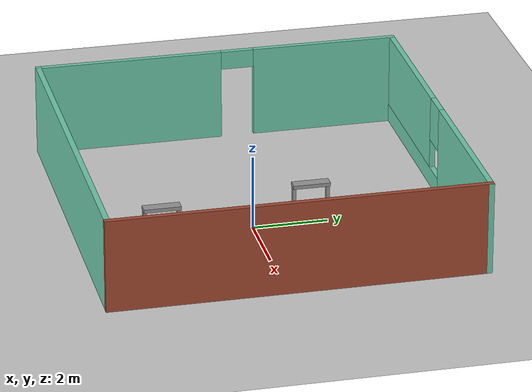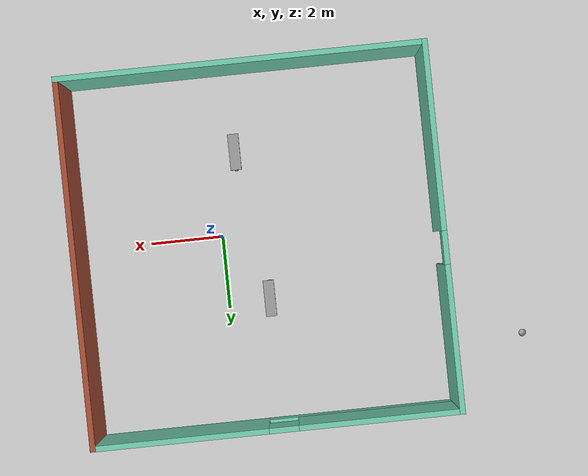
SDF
<sdf version="1.6">
 <world name="default">
  <plugin name="hello" filename="libhello.so"/>
  <light name="sun" type="directional">
   <pose>0 0 10 0 -0 0</pose>
   <diffuse>0.8 0.8 0.8 1</diffuse>
   <specular>0.2 0.2 0.2 1</specular>
   <attenuation>
    <range>1000</range>
    <constant>0.9</constant>
    <linear>0.01</linear>
    <quadratic>0.001</quadratic>
   </attenuation>
   <direction>-0.5 0.1 -0.9</direction>
  </light>
  <model name="ground_plane">
   <static>1</static>
   <link name="link">
    <collision name="collision">
     <geometry><plane><normal>0 0 1</normal><size>100 100</size></plane></geometry>
     <surface><friction><ode><mu>100</mu><mu2>50</mu2></ode></friction></surface>
    </collision>
    <visual name="visual">
     <cast_shadows>0</cast_shadows>
     <geometry><plane><normal>0 0 1</normal><size>100 100</size></plane></geometry>
     <material>
      <script><uri>file://media/materials/scripts/gazebo.material</uri><name>Gazebo/Grey</name></script>
     </material>
    </visual>
   </link>
  </model>
  <gravity>0 0 -9.8</gravity>
  <magnetic_field>6e-06 2.3e-05 -4.2e-05</magnetic_field>
  <atmosphere type="adiabatic"/>
  <physics name="default_physics" default="0" type="ode">
   <max_step_size>0.001</max_step_size>
   <real_time_factor>1</real_time_factor>
   <real_time_update_rate>1000</real_time_update_rate>
  </physics>
  <scene><ambient>0.4 0.4 0.4 1</ambient><background>0.7 0.7 0.7 1</background><shadows>1</shadows></scene>
  <spherical_coordinates>
   <surface_model>EARTH_WGS84</surface_model>
   <latitude_deg>0</latitude_deg>
   <longitude_deg>0</longitude_deg>
   <elevation>0</elevation>
   <heading_deg>0</heading_deg>
  </spherical_coordinates>
  <model name="building-model-1">
   <pose>-1.03681 0.344506 0 0 -0 0</pose>
   <link name="Wall_0">
    <pose>-4.925 0 0 0 0 -1.5708</pose>
    <visual name="Wall_0_Visual_0">
     <pose>-3.00636 0 1.25 0 -0 0</pose>
     <geometry><box><size>3.98729 0.15 2.5</size></box></geometry>
     <material>
      <script><uri>file://media/materials/scripts/gazebo.material</uri><name>Gazebo/Grey</name></script>
      <ambient>0.435294 0.796078 0.67451 1</ambient>
     </material>
     <meta><layer>0</layer></meta>
    </visual>
    <collision name="Wall_0_Collision_0">
     <geometry><box><size>3.98729 0.15 2.5</size></box></geometry>
     <pose>-3.00636 0 1.25 0 -0 0</pose>
    </collision>
    <visual name="Wall_0_Visual_1">
     <pose>2.44364 0 1.25 0 -0 0</pose>
     <geometry><box><size>5.11271 0.15 2.5</size></box></geometry>
     <material>
      <script><uri>file://media/materials/scripts/gazebo.material</uri><name>Gazebo/Grey</name></script>
      <ambient>0.435294 0.796078 0.67451 1</ambient>
     </material>
     <meta><layer>0</layer></meta>
    </visual>
    <collision name="Wall_0_Collision_1">
     <geometry><box><size>5.11271 0.15 2.5</size></box></geometry>
     <pose>2.44364 0 1.25 0 -0 0</pose>
    </collision>
    <visual name="Wall_0_Visual_2">
     <pose>-0.562712 0 2.25 0 -0 0</pose>
     <geometry><box><size>0.9 0.15 0.5</size></box></geometry>
     <material>
      <script><uri>file://media/materials/scripts/gazebo.material</uri><name>Gazebo/Grey</name></script>
      <ambient>0.435294 0.796078 0.67451 1</ambient>
     </material>
     <meta><layer>0</layer></meta>
    </visual>
    <collision name="Wall_0_Collision_2">
     <geometry><box><size>0.9 0.15 0.5</size></box></geometry>
     <pose>-0.562712 0 2.25 0 -0 0</pose>
    </collision>
   </link>
   <link name="Wall_1">
    <collision name="Wall_1_Collision">
     <geometry><box><size>10 0.15 2.5</size></box></geometry>
     <pose>0 0 1.25 0 -0 0</pose>
    </collision>
    <visual name="Wall_1_Visual">
     <pose>0 0 1.25 0 -0 0</pose>
     <geometry><box><size>10 0.15 2.5</size></box></geometry>
     <material>
      <script><uri>file://media/materials/scripts/gazebo.material</uri><name>Gazebo/Grey</name></script>
      <ambient>0.435294 0.796078 0.67451 1</ambient>
     </material>
     <meta><layer>0</layer></meta>
    </visual>
    <pose>0 -4.925 0 0 -0 0</pose>
   </link>
   <link name="Wall_2">
    <collision name="Wall_2_Collision">
     <geometry><box><size>10 0.15 2.5</size></box></geometry>
     <pose>0 0 1.25 0 -0 0</pose>
    </collision>
    <visual name="Wall_2_Visual">
     <pose>0 0 1.25 0 -0 0</pose>
     <geometry><box><size>10 0.15 2.5</size></box></geometry>
     <material>
      <script><uri>file://media/materials/scripts/gazebo.material</uri><name>Gazebo/Bricks</name></script>
      <ambient>0.435294 0.796078 0.67451 1</ambient>
     </material>
     <meta><layer>0</layer></meta>
    </visual>
    <pose>4.925 0 0 0 -0 1.5708</pose>
   </link>
   <link name="Wall_3">
    <pose>0 4.925 0 0 -0 3.14159</pose>
    <visual name="Wall_3_Visual_0">
     <pose>-2.6129 0 1.25 0 -0 0</pose>
     <geometry><box><size>4.77419 0.15 2.5</size></box></geometry>
     <material>
      <script><uri>file://media/materials/scripts/gazebo.material</uri><name>Gazebo/Grey</name></script>
      <ambient>0.435294 0.796078 0.67451 1</ambient>
     </material>
     <meta><layer>0</layer></meta>
    </visual>
    <collision name="Wall_3_Collision_0">
     <geometry><box><size>4.77419 0.15 2.5</size></box></geometry>
     <pose>-2.6129 0 1.25 0 -0 0</pose>
    </collision>
    <visual name="Wall_3_Visual_1">
     <pose>2.3871 0 0.25 0 -0 0</pose>
     <geometry><box><size>5.22581 0.15 0.5</size></box></geometry>
     <material>
      <script><uri>file://media/materials/scripts/gazebo.material</uri><name>Gazebo/Grey</name></script>
      <ambient>0.435294 0.796078 0.67451 1</ambient>
     </material>
     <meta><layer>0</layer></meta>
    </visual>
    <collision name="Wall_3_Collision_1">
     <geometry><box><size>5.22581 0.15 0.5</size></box></geometry>
     <pose>2.3871 0 0.25 0 -0 0</pose>
    </collision>
    <visual name="Wall_3_Visual_2">
     <pose>2.7871 0 1.5 0 -0 0</pose>
     <geometry><box><size>4.42581 0.15 2</size></box></geometry>
     <material>
      <script><uri>file://media/materials/scripts/gazebo.material</uri><name>Gazebo/Grey</name></script>
      <ambient>0.435294 0.796078 0.67451 1</ambient>
     </material>
     <meta><layer>0</layer></meta>
    </visual>
    <collision name="Wall_3_Collision_2">
     <geometry><box><size>4.42581 0.15 2</size></box></geometry>
     <pose>2.7871 0 1.5 0 -0 0</pose>
    </collision>
    <visual name="Wall_3_Visual_3">
     <pose>0.174191 0 1.9 0 -0 0</pose>
     <geometry><box><size>0.8 0.15 1.2</size></box></geometry>
     <material>
      <script><uri>file://media/materials/scripts/gazebo.material</uri><name>Gazebo/Grey</name></script>
      <ambient>0.435294 0.796078 0.67451 1</ambient>
     </material>
     <meta><layer>0</layer></meta>
    </visual>
    <collision name="Wall_3_Collision_3">
     <geometry><box><size>0.8 0.15 1.2</size></box></geometry>
     <pose>0.174191 0 1.9 0 -0 0</pose>
    </collision>
   </link>
   <static>1</static>
  </model>
  <model name="robot-model-1">
   <link name="link_0">
    <pose>6.80251 -5.27057 0.5 0 -0 0</pose>
    <inertial>
     <mass>1</mass>
     <inertia>
      <ixx>0.166667</ixx>
      <ixy>0</ixy>
      <ixz>0</ixz>
      <iyy>0.166667</iyy>
      <iyz>0</iyz>
      <izz>0.166667</izz>
     </inertia>
    </inertial>
    <visual name="visual">
     <geometry><box><size>0.3 1 0.1</size></box></geometry>
     <material>
      <lighting>1</lighting>
      <script><uri>file://media/materials/scripts/gazebo.material</uri><name>Gazebo/Grey</name></script>
      <shader type="pixel"><normal_map>__default__</normal_map></shader>
      <ambient>0.3 0.3 0.3 1</ambient>
      <diffuse>0.7 0.7 0.7 1</diffuse>
      <specular>0.01 0.01 0.01 1</specular>
      <emissive>0 0 0 1</emissive>
     </material>
    </visual>
    <collision name="collision">
     <geometry><box><size>0.3 1 0.1</size></box></geometry>
     <surface>
      <friction>
       <ode><mu>1</mu><mu2>1</mu2><fdir1>0 0 0</fdir1><slip1>0</slip1><slip2>0</slip2></ode>
       <torsional>
        <coefficient>1</coefficient>
        <patch_radius>0</patch_radius>
        <surface_radius>0</surface_radius>
        <use_patch_radius>1</use_patch_radius>
        <ode><slip>0</slip></ode>
       </torsional>
      </friction>
      <bounce><restitution_coefficient>0</restitution_coefficient><threshold>1e+06</threshold></bounce>
      <contact>
       <collide_without_contact>0</collide_without_contact>
       <collide_without_contact_bitmask>1</collide_without_contact_bitmask>
       <collide_bitmask>1</collide_bitmask>
       <ode>
        <soft_cfm>0</soft_cfm>
        <soft_erp>0.2</soft_erp>
        <kp>1e+13</kp>
        <kd>1</kd>
        <max_vel>0.01</max_vel>
        <min_depth>0</min_depth>
       </ode>
       <bullet>
        <split_impulse>1</split_impulse>
        <split_impulse_penetration_threshold>-0.01</split_impulse_penetration_threshold>
        <soft_cfm>0</soft_cfm>
        <soft_erp>0.2</soft_erp>
        <kp>1e+13</kp>
        <kd>1</kd>
       </bullet>
      </contact>
     </surface>
    </collision>
   </link>
   <link name="link_1">
    <pose>6.75751 -5.72057 0.2 0 -0 0</pose>
    <inertial>
     <mass>1</mass>
     <inertia>
      <ixx>0.166667</ixx>
      <ixy>0</ixy>
      <ixz>0</ixz>
      <iyy>0.166667</iyy>
      <iyz>0</iyz>
      <izz>0.166667</izz>
     </inertia>
    </inertial>
    <visual name="visual">
     <geometry><box><size>0.1 0.1 0.5</size></box></geometry>
     <material>
      <lighting>1</lighting>
      <script><uri>file://media/materials/scripts/gazebo.material</uri><name>Gazebo/Grey</name></script>
      <shader type="pixel"><normal_map>__default__</normal_map></shader>
      <ambient>0.3 0.3 0.3 1</ambient>
      <diffuse>0.7 0.7 0.7 1</diffuse>
      <specular>0.01 0.01 0.01 1</specular>
      <emissive>0 0 0 1</emissive>
     </material>
    </visual>
    <collision name="collision">
     <geometry><box><size>0.1 0.1 0.5</size></box></geometry>
     <surface>
      <friction>
       <ode><mu>1</mu><mu2>1</mu2><fdir1>0 0 0</fdir1><slip1>0</slip1><slip2>0</slip2></ode>
       <torsional>
        <coefficient>1</coefficient>
        <patch_radius>0</patch_radius>
        <surface_radius>0</surface_radius>
        <use_patch_radius>1</use_patch_radius>
        <ode><slip>0</slip></ode>
       </torsional>
      </friction>
      <bounce><restitution_coefficient>0</restitution_coefficient><threshold>1e+06</threshold></bounce>
      <contact>
       <collide_without_contact>0</collide_without_contact>
       <collide_without_contact_bitmask>1</collide_without_contact_bitmask>
       <collide_bitmask>1</collide_bitmask>
       <ode>
        <soft_cfm>0</soft_cfm>
        <soft_erp>0.2</soft_erp>
        <kp>1e+13</kp>
        <kd>1</kd>
        <max_vel>0.01</max_vel>
        <min_depth>0</min_depth>
       </ode>
       <bullet>
        <split_impulse>1</split_impulse>
        <split_impulse_penetration_threshold>-0.01</split_impulse_penetration_threshold>
        <soft_cfm>0</soft_cfm>
        <soft_erp>0.2</soft_erp>
        <kp>1e+13</kp>
        <kd>1</kd>
       </bullet>
      </contact>
     </surface>
    </collision>
   </link>
   <link name="link_1_clone">
    <pose>6.80251 -4.82057 0.2 0 -0 0</pose>
    <inertial>
     <mass>1</mass>
     <inertia>
      <ixx>0.166667</ixx>
      <ixy>0</ixy>
      <ixz>0</ixz>
      <iyy>0.166667</iyy>
      <iyz>0</iyz>
      <izz>0.166667</izz>
     </inertia>
    </inertial>
    <visual name="visual">
     <geometry><box><size>0.1 0.1 0.5</size></box></geometry>
     <material>
      <lighting>1</lighting>
      <script><uri>file://media/materials/scripts/gazebo.material</uri><name>Gazebo/Grey</name></script>
      <shader type="pixel"><normal_map>__default__</normal_map></shader>
      <ambient>0.3 0.3 0.3 1</ambient>
      <diffuse>0.7 0.7 0.7 1</diffuse>
      <specular>0.01 0.01 0.01 1</specular>
      <emissive>0 0 0 1</emissive>
     </material>
    </visual>
    <collision name="collision">
     <geometry><box><size>0.1 0.1 0.5</size></box></geometry>
     <surface>
      <friction>
       <ode><mu>1</mu><mu2>1</mu2><fdir1>0 0 0</fdir1><slip1>0</slip1><slip2>0</slip2></ode>
       <torsional>
        <coefficient>1</coefficient>
        <patch_radius>0</patch_radius>
        <surface_radius>0</surface_radius>
        <use_patch_radius>1</use_patch_radius>
        <ode><slip>0</slip></ode>
       </torsional>
      </friction>
      <bounce><restitution_coefficient>0</restitution_coefficient><threshold>1e+06</threshold></bounce>
      <contact>
       <collide_without_contact>0</collide_without_contact>
       <collide_without_contact_bitmask>1</collide_without_contact_bitmask>
       <collide_bitmask>1</collide_bitmask>
       <ode>
        <soft_cfm>0</soft_cfm>
        <soft_erp>0.2</soft_erp>
        <kp>1e+13</kp>
        <kd>1</kd>
        <max_vel>0.01</max_vel>
        <min_depth>0</min_depth>
       </ode>
       <bullet>
        <split_impulse>1</split_impulse>
        <split_impulse_penetration_threshold>-0.01</split_impulse_penetration_threshold>
        <soft_cfm>0</soft_cfm>
        <soft_erp>0.2</soft_erp>
        <kp>1e+13</kp>
        <kd>1</kd>
       </bullet>
      </contact>
     </surface>
    </collision>
   </link>
   <joint name="link_0_JOINT_0" type="fixed">
    <parent>link_0</parent>
    <child>link_1</child>
    <physics>
     <ode><limit><cfm>0</cfm><erp>0.2</erp></limit><suspension><cfm>0</cfm><erp>0.2</erp></suspension></ode>
    </physics>
   </joint>
   <joint name="link_0_JOINT_1" type="revolute">
    <parent>link_0</parent>
    <child>link_1_clone</child>
    <axis>
     <xyz>1 0 0</xyz>
     <use_parent_model_frame>0</use_parent_model_frame>
     <limit>
      <lower>-1.79769e+308</lower>
      <upper>1.79769e+308</upper>
      <effort>-1</effort>
      <velocity>-1</velocity>
     </limit>
     <dynamics>
      <spring_reference>0</spring_reference>
      <spring_stiffness>0</spring_stiffness>
      <damping>0</damping>
     </dynamics>
    </axis>
    <physics>
     <ode><limit><cfm>0</cfm><erp>0.2</erp></limit><suspension><cfm>0</cfm><erp>0.2</erp></suspension></ode>
    </physics>
   </joint>
   <static>0</static>
   <pose>-7.38776 2.96739 0.049966 4e-06 -8e-06 -2.4e-05</pose>
  </model>
  <model name="robot-model-1_0">
   <link name="link_0">
    <pose>6.80251 -5.27057 0.5 0 -0 0</pose>
    <inertial>
     <mass>1</mass>
     <inertia>
      <ixx>0.166667</ixx>
      <ixy>0</ixy>
      <ixz>0</ixz>
      <iyy>0.166667</iyy>
      <iyz>0</iyz>
      <izz>0.166667</izz>
     </inertia>
    </inertial>
    <visual name="visual">
     <geometry><box><size>0.3 1 0.1</size></box></geometry>
     <material>
      <lighting>1</lighting>
      <script><uri>file://media/materials/scripts/gazebo.material</uri><name>Gazebo/Grey</name></script>
      <shader type="pixel"><normal_map>__default__</normal_map></shader>
      <ambient>0.3 0.3 0.3 1</ambient>
      <diffuse>0.7 0.7 0.7 1</diffuse>
      <specular>0.01 0.01 0.01 1</specular>
      <emissive>0 0 0 1</emissive>
     </material>
    </visual>
    <collision name="collision">
     <geometry><box><size>0.3 1 0.1</size></box></geometry>
     <surface>
      <friction>
       <ode><mu>1</mu><mu2>1</mu2><fdir1>0 0 0</fdir1><slip1>0</slip1><slip2>0</slip2></ode>
       <torsional>
        <coefficient>1</coefficient>
        <patch_radius>0</patch_radius>
        <surface_radius>0</surface_radius>
        <use_patch_radius>1</use_patch_radius>
        <ode><slip>0</slip></ode>
       </torsional>
      </friction>
      <bounce><restitution_coefficient>0</restitution_coefficient><threshold>1e+06</threshold></bounce>
      <contact>
       <collide_without_contact>0</collide_without_contact>
       <collide_without_contact_bitmask>1</collide_without_contact_bitmask>
       <collide_bitmask>1</collide_bitmask>
       <ode>
        <soft_cfm>0</soft_cfm>
        <soft_erp>0.2</soft_erp>
        <kp>1e+13</kp>
        <kd>1</kd>
        <max_vel>0.01</max_vel>
        <min_depth>0</min_depth>
       </ode>
       <bullet>
        <split_impulse>1</split_impulse>
        <split_impulse_penetration_threshold>-0.01</split_impulse_penetration_threshold>
        <soft_cfm>0</soft_cfm>
        <soft_erp>0.2</soft_erp>
        <kp>1e+13</kp>
        <kd>1</kd>
       </bullet>
      </contact>
     </surface>
    </collision>
   </link>
   <link name="link_1">
    <pose>6.75751 -5.72057 0.2 0 -0 0</pose>
    <inertial>
     <mass>1</mass>
     <inertia>
      <ixx>0.166667</ixx>
      <ixy>0</ixy>
      <ixz>0</ixz>
      <iyy>0.166667</iyy>
      <iyz>0</iyz>
      <izz>0.166667</izz>
     </inertia>
    </inertial>
    <visual name="visual">
     <geometry><box><size>0.1 0.1 0.5</size></box></geometry>
     <material>
      <lighting>1</lighting>
      <script><uri>file://media/materials/scripts/gazebo.material</uri><name>Gazebo/Grey</name></script>
      <shader type="pixel"><normal_map>__default__</normal_map></shader>
      <ambient>0.3 0.3 0.3 1</ambient>
      <diffuse>0.7 0.7 0.7 1</diffuse>
      <specular>0.01 0.01 0.01 1</specular>
      <emissive>0 0 0 1</emissive>
     </material>
    </visual>
    <collision name="collision">
     <geometry><box><size>0.1 0.1 0.5</size></box></geometry>
     <surface>
      <friction>
       <ode><mu>1</mu><mu2>1</mu2><fdir1>0 0 0</fdir1><slip1>0</slip1><slip2>0</slip2></ode>
       <torsional>
        <coefficient>1</coefficient>
        <patch_radius>0</patch_radius>
        <surface_radius>0</surface_radius>
        <use_patch_radius>1</use_patch_radius>
        <ode><slip>0</slip></ode>
       </torsional>
      </friction>
      <bounce><restitution_coefficient>0</restitution_coefficient><threshold>1e+06</threshold></bounce>
      <contact>
       <collide_without_contact>0</collide_without_contact>
       <collide_without_contact_bitmask>1</collide_without_contact_bitmask>
       <collide_bitmask>1</collide_bitmask>
       <ode>
        <soft_cfm>0</soft_cfm>
        <soft_erp>0.2</soft_erp>
        <kp>1e+13</kp>
        <kd>1</kd>
        <max_vel>0.01</max_vel>
        <min_depth>0</min_depth>
       </ode>
       <bullet>
        <split_impulse>1</split_impulse>
        <split_impulse_penetration_threshold>-0.01</split_impulse_penetration_threshold>
        <soft_cfm>0</soft_cfm>
        <soft_erp>0.2</soft_erp>
        <kp>1e+13</kp>
        <kd>1</kd>
       </bullet>
      </contact>
     </surface>
    </collision>
   </link>
   <link name="link_1_clone">
    <pose>6.80251 -4.82057 0.2 0 -0 0</pose>
    <inertial>
     <mass>1</mass>
     <inertia>
      <ixx>0.166667</ixx>
      <ixy>0</ixy>
      <ixz>0</ixz>
      <iyy>0.166667</iyy>
      <iyz>0</iyz>
      <izz>0.166667</izz>
     </inertia>
    </inertial>
    <visual name="visual">
     <geometry><box><size>0.1 0.1 0.5</size></box></geometry>
     <material>
      <lighting>1</lighting>
      <script><uri>file://media/materials/scripts/gazebo.material</uri><name>Gazebo/Grey</name></script>
      <shader type="pixel"><normal_map>__default__</normal_map></shader>
      <ambient>0.3 0.3 0.3 1</ambient>
      <diffuse>0.7 0.7 0.7 1</diffuse>
      <specular>0.01 0.01 0.01 1</specular>
      <emissive>0 0 0 1</emissive>
     </material>
    </visual>
    <collision name="collision">
     <geometry><box><size>0.1 0.1 0.5</size></box></geometry>
     <surface>
      <friction>
       <ode><mu>1</mu><mu2>1</mu2><fdir1>0 0 0</fdir1><slip1>0</slip1><slip2>0</slip2></ode>
       <torsional>
        <coefficient>1</coefficient>
        <patch_radius>0</patch_radius>
        <surface_radius>0</surface_radius>
        <use_patch_radius>1</use_patch_radius>
        <ode><slip>0</slip></ode>
       </torsional>
      </friction>
      <bounce><restitution_coefficient>0</restitution_coefficient><threshold>1e+06</threshold></bounce>
      <contact>
       <collide_without_contact>0</collide_without_contact>
       <collide_without_contact_bitmask>1</collide_without_contact_bitmask>
       <collide_bitmask>1</collide_bitmask>
       <ode>
        <soft_cfm>0</soft_cfm>
        <soft_erp>0.2</soft_erp>
        <kp>1e+13</kp>
        <kd>1</kd>
        <max_vel>0.01</max_vel>
        <min_depth>0</min_depth>
       </ode>
       <bullet>
        <split_impulse>1</split_impulse>
        <split_impulse_penetration_threshold>-0.01</split_impulse_penetration_threshold>
        <soft_cfm>0</soft_cfm>
        <soft_erp>0.2</soft_erp>
        <kp>1e+13</kp>
        <kd>1</kd>
       </bullet>
      </contact>
     </surface>
    </collision>
   </link>
   <joint name="link_0_JOINT_0" type="fixed">
    <parent>link_0</parent>
    <child>link_1</child>
    <physics>
     <ode><limit><cfm>0</cfm><erp>0.2</erp></limit><suspension><cfm>0</cfm><erp>0.2</erp></suspension></ode>
    </physics>
   </joint>
   <joint name="link_0_JOINT_1" type="revolute">
    <parent>link_0</parent>
    <child>link_1_clone</child>
    <axis>
     <xyz>1 0 0</xyz>
     <use_parent_model_frame>0</use_parent_model_frame>
     <limit>
      <lower>-1.79769e+308</lower>
      <upper>1.79769e+308</upper>
      <effort>-1</effort>
      <velocity>-1</velocity>
     </limit>
     <dynamics>
      <spring_reference>0</spring_reference>
      <spring_stiffness>0</spring_stiffness>
      <damping>0</damping>
     </dynamics>
    </axis>
    <physics>
     <ode><limit><cfm>0</cfm><erp>0.2</erp></limit><suspension><cfm>0</cfm><erp>0.2</erp></suspension></ode>
    </physics>
   </joint>
   <static>0</static>
   <pose>-7.95322 7.10345 0.050365 3.9e-05 2e-05 -1.4e-05</pose>
  </model>
  <model name="my_ball">
   <link name="link_0">
    <inertial>
     <mass>1</mass>
     <inertia><ixx>0.1</ixx><ixy>0</ixy><ixz>0</ixz><iyy>0.1</iyy><iyz>0</iyz><izz>0.1</izz></inertia>
    </inertial>
    <visual name="visual">
     <geometry><sphere><radius>0.1</radius></sphere></geometry>
     <material>
      <lighting>1</lighting>
      <script><uri>file://media/materials/scripts/gazebo.material</uri><name>Gazebo/Grey</name></script>
      <shader type="pixel"><normal_map>__default__</normal_map></shader>
      <ambient>1 1 1 1</ambient>
      <diffuse>1 1 1 1</diffuse>
      <specular>1 1 1 1</specular>
      <emissive>1 1 1 1</emissive>
     </material>
    </visual>
    <collision name="collision">
     <geometry><sphere><radius>0.1</radius></sphere></geometry>
     <surface>
      <friction>
       <ode><mu>1</mu><mu2>1</mu2><fdir1>0 0 0</fdir1><slip1>0</slip1><slip2>0</slip2></ode>
       <torsional>
        <coefficient>1</coefficient>
        <patch_radius>0</patch_radius>
        <surface_radius>0</surface_radius>
        <use_patch_radius>1</use_patch_radius>
        <ode><slip>0</slip></ode>
       </torsional>
      </friction>
      <bounce><restitution_coefficient>0</restitution_coefficient><threshold>1e+06</threshold></bounce>
      <contact>
       <collide_without_contact>0</collide_without_contact>
       <collide_without_contact_bitmask>1</collide_without_contact_bitmask>
       <collide_bitmask>1</collide_bitmask>
       <ode>
        <soft_cfm>0</soft_cfm>
        <soft_erp>0.2</soft_erp>
        <kp>1e+13</kp>
        <kd>1</kd>
        <max_vel>0.01</max_vel>
        <min_depth>0</min_depth>
       </ode>
       <bullet>
        <split_impulse>1</split_impulse>
        <split_impulse_penetration_threshold>-0.01</split_impulse_penetration_threshold>
        <soft_cfm>0</soft_cfm>
        <soft_erp>0.2</soft_erp>
        <kp>1e+13</kp>
        <kd>1</kd>
       </bullet>
      </contact>
     </surface>
    </collision>
   </link>
   <static>0</static>
   <pose>-8.0827 3.52634 0.1 0 -0 0</pose>
  </model>
 </world>
</sdf>
